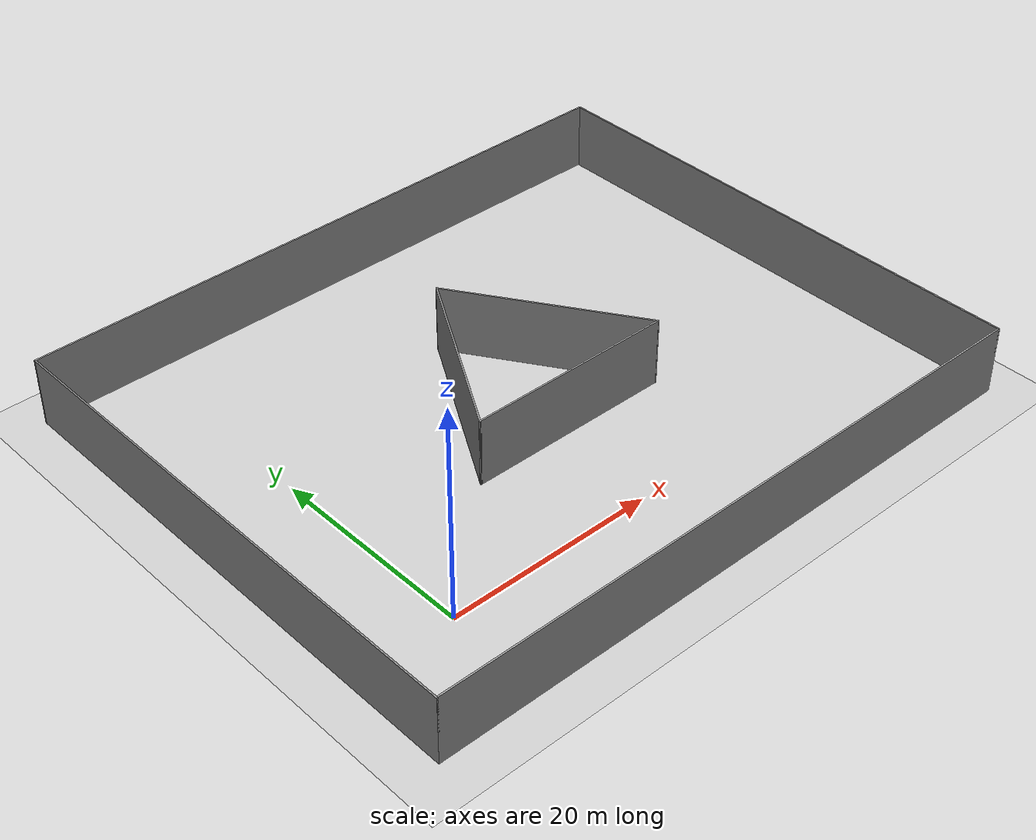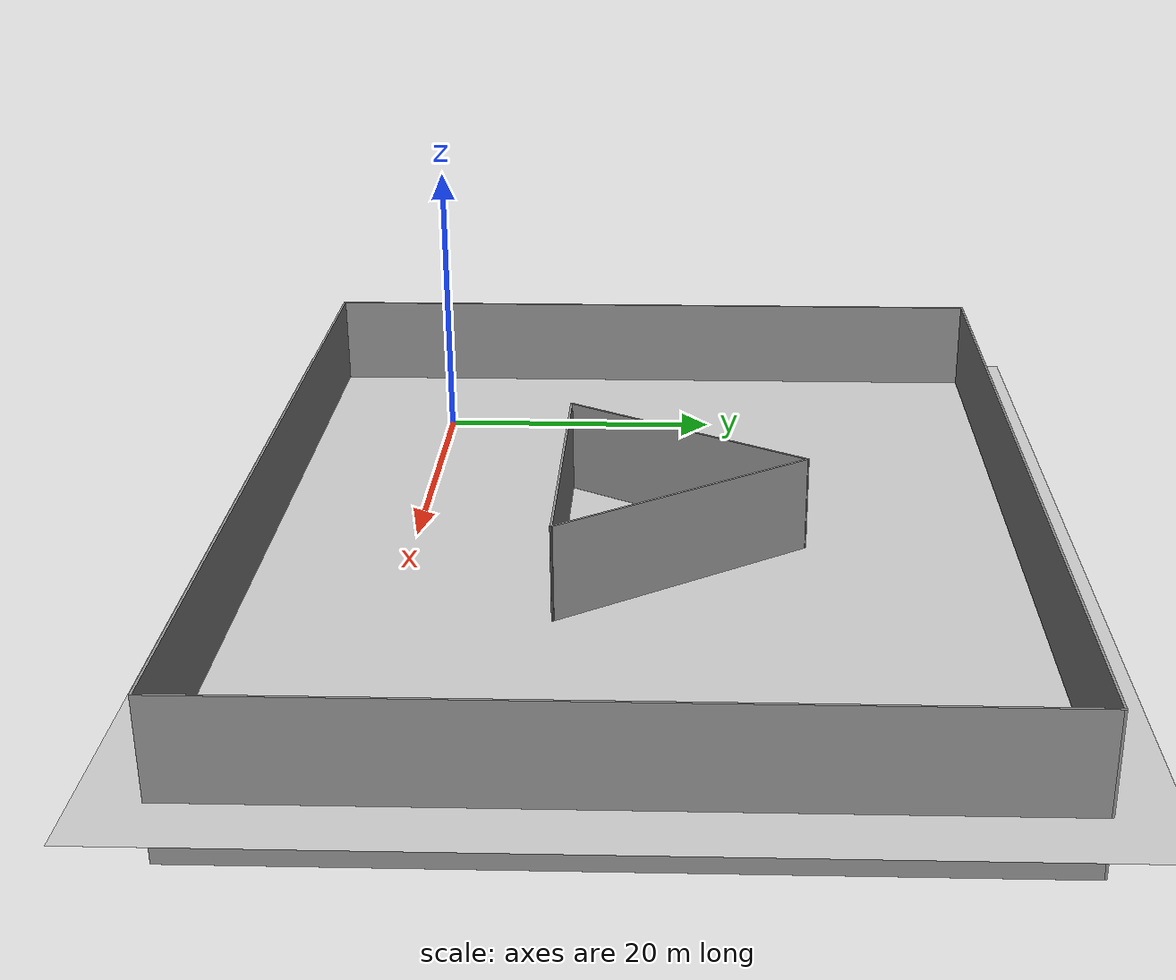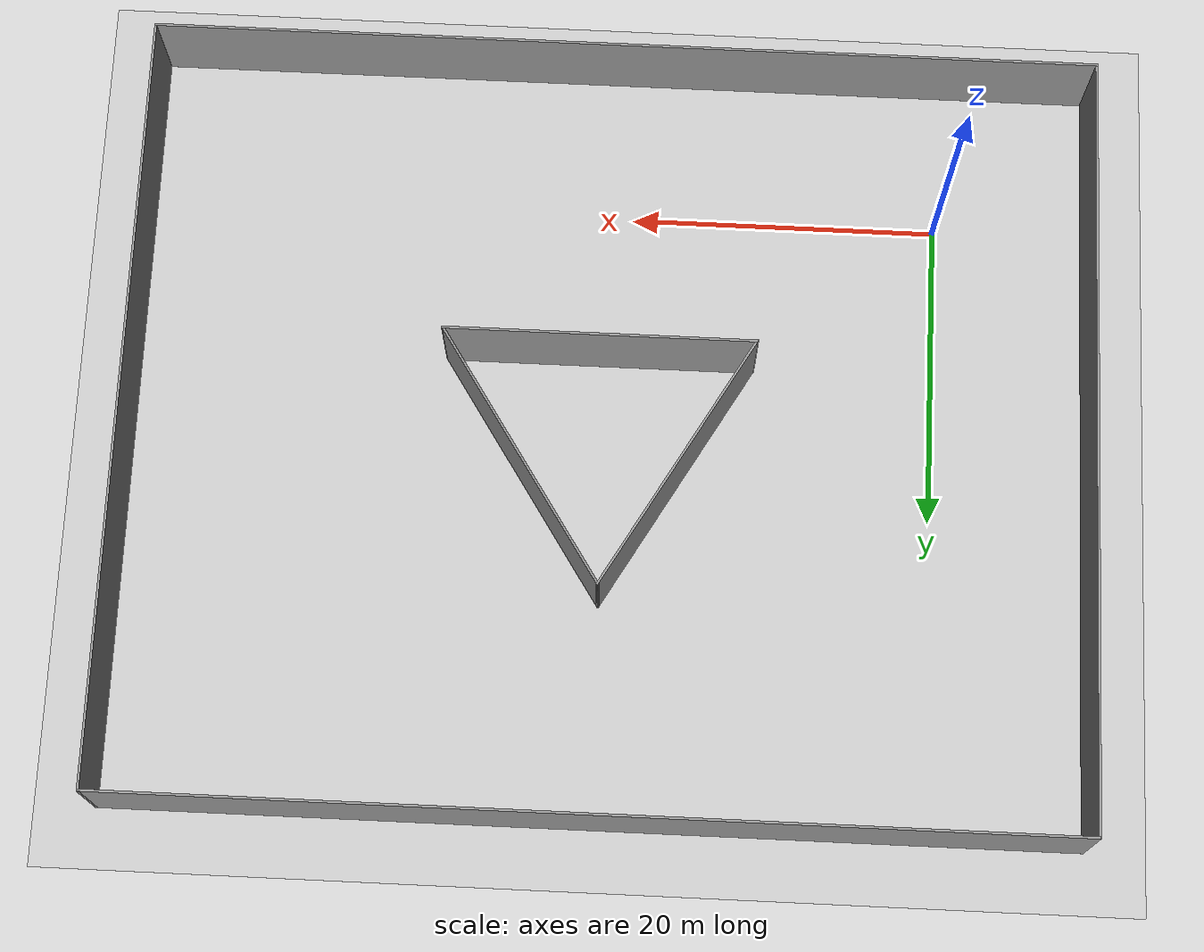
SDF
<sdf version="1.7">
 <world name="default">
  <light name="sun" type="directional">
   <pose>0 0 10 0 -0 0</pose>
   <diffuse>0.8 0.8 0.8 1</diffuse>
   <specular>0.2 0.2 0.2 1</specular>
   <attenuation>
    <range>1000</range>
    <constant>0.9</constant>
    <linear>0.01</linear>
    <quadratic>0.001</quadratic>
   </attenuation>
   <direction>-0.5 0.1 -0.9</direction>
   <spot><inner_angle>0</inner_angle><outer_angle>0</outer_angle><falloff>0</falloff></spot>
  </light>
  <model name="ground_plane">
   <static>1</static>
   <link name="link">
    <collision name="collision">
     <geometry><plane><normal>0 0 1</normal><size>100 100</size></plane></geometry>
     <surface><friction><ode><mu>100</mu><mu2>50</mu2></ode></friction></surface>
    </collision>
    <visual name="visual">
     <cast_shadows>0</cast_shadows>
     <geometry><plane><normal>0 0 1</normal><size>100 100</size></plane></geometry>
     <material>
      <script><uri>file://media/materials/scripts/gazebo.material</uri><name>Gazebo/Grey</name></script>
     </material>
    </visual>
   </link>
  </model>
  <gravity>0 0 -9.8</gravity>
  <magnetic_field>6e-06 2.3e-05 -4.2e-05</magnetic_field>
  <atmosphere type="adiabatic"/>
  <physics type="ode">
   <max_step_size>0.01</max_step_size>
   <real_time_factor>1</real_time_factor>
   <real_time_update_rate>100</real_time_update_rate>
  </physics>
  <scene><ambient>0.4 0.4 0.4 1</ambient><background>0.7 0.7 0.7 1</background><shadows>1</shadows></scene>
  <audio><device>default</device></audio>
  <spherical_coordinates>
   <surface_model>EARTH_WGS84</surface_model>
   <latitude_deg>0</latitude_deg>
   <longitude_deg>0</longitude_deg>
   <elevation>0</elevation>
   <heading_deg>0</heading_deg>
  </spherical_coordinates>
  <model name="Untitled">
   <pose>21.0471 15.4632 0 0 -0 0</pose>
   <link name="Wall_10">
    <collision name="Wall_10_Collision">
     <geometry><box><size>19 0.15 10.5</size></box></geometry>
     <pose>0 0 1.25 0 -0 0</pose>
    </collision>
    <visual name="Wall_10_Visual">
     <pose>0 0 1.25 0 -0 0</pose>
     <geometry><box><size>19 0.15 10.5</size></box></geometry>
     <material>
      <script><uri>file://media/materials/scripts/gazebo.material</uri><name>Gazebo/Grey</name></script>
      <ambient>1 1 1 1</ambient>
     </material>
     <meta><layer>0</layer></meta>
    </visual>
    <pose>-4.62404 2.90142 0 0 -0 -2.0944</pose>
   </link>
   <link name="Wall_11">
    <collision name="Wall_11_Collision">
     <geometry><box><size>20.25 0.15 10.5</size></box></geometry>
     <pose>0 0 1.25 0 -0 0</pose>
    </collision>
    <visual name="Wall_11_Visual">
     <pose>0 0 1.25 0 -0 0</pose>
     <geometry><box><size>20.25 0.15 10.5</size></box></geometry>
     <material>
      <script><uri>file://media/materials/scripts/gazebo.material</uri><name>Gazebo/Grey</name></script>
      <ambient>1 1 1 1</ambient>
     </material>
     <meta><layer>0</layer></meta>
    </visual>
    <pose>0.713455 -5.26087 0 0 -0 0</pose>
   </link>
   <link name="Wall_12">
    <collision name="Wall_12_Collision">
     <geometry><box><size>19.6551 0.15 10.5</size></box></geometry>
     <pose>0 0 1.25 0 -0 0</pose>
    </collision>
    <visual name="Wall_12_Visual">
     <pose>0 0 1.25 0 -0 0</pose>
     <geometry><box><size>19.6551 0.15 10.5</size></box></geometry>
     <material>
      <script><uri>file://media/materials/scripts/gazebo.material</uri><name>Gazebo/Grey</name></script>
      <ambient>1 1 1 1</ambient>
     </material>
     <meta><layer>0</layer></meta>
    </visual>
    <pose>5.42596 2.90142 0 0 -0 2.14992</pose>
   </link>
   <link name="Wall_5">
    <collision name="Wall_5_Collision">
     <geometry><box><size>62.25 0.15 10.5</size></box></geometry>
     <pose>0 0 1.25 0 -0 0</pose>
    </collision>
    <visual name="Wall_5_Visual">
     <pose>0 0 1.25 0 -0 0</pose>
     <geometry><box><size>62.25 0.15 10.5</size></box></geometry>
     <material>
      <script><uri>file://media/materials/scripts/gazebo.material</uri><name>Gazebo/Grey</name></script>
      <ambient>1 1 1 1</ambient>
     </material>
     <meta><layer>0</layer></meta>
    </visual>
    <pose>-1e-06 -25.425 0 0 -0 0</pose>
   </link>
   <link name="Wall_6">
    <collision name="Wall_6_Collision">
     <geometry><box><size>51 0.15 10.5</size></box></geometry>
     <pose>0 0 1.25 0 -0 0</pose>
    </collision>
    <visual name="Wall_6_Visual">
     <pose>0 0 1.25 0 -0 0</pose>
     <geometry><box><size>51 0.15 10.5</size></box></geometry>
     <material>
      <script><uri>file://media/materials/scripts/gazebo.material</uri><name>Gazebo/Grey</name></script>
      <ambient>1 1 1 1</ambient>
     </material>
     <meta><layer>0</layer></meta>
    </visual>
    <pose>31.05 1e-06 0 0 -0 1.5708</pose>
   </link>
   <link name="Wall_7">
    <collision name="Wall_7_Collision">
     <geometry><box><size>62.25 0.15 10.5</size></box></geometry>
     <pose>0 0 1.25 0 -0 0</pose>
    </collision>
    <visual name="Wall_7_Visual">
     <pose>0 0 1.25 0 -0 0</pose>
     <geometry><box><size>62.25 0.15 10.5</size></box></geometry>
     <material>
      <script><uri>file://media/materials/scripts/gazebo.material</uri><name>Gazebo/Grey</name></script>
      <ambient>1 1 1 1</ambient>
     </material>
     <meta><layer>0</layer></meta>
    </visual>
    <pose>-1e-06 25.425 0 0 -0 3.14159</pose>
   </link>
   <link name="Wall_8">
    <collision name="Wall_8_Collision">
     <geometry><box><size>51 0.15 10.5</size></box></geometry>
     <pose>0 0 1.25 0 -0 0</pose>
    </collision>
    <visual name="Wall_8_Visual">
     <pose>0 0 1.25 0 -0 0</pose>
     <geometry><box><size>51 0.15 10.5</size></box></geometry>
     <material>
      <script><uri>file://media/materials/scripts/gazebo.material</uri><name>Gazebo/Grey</name></script>
      <ambient>1 1 1 1</ambient>
     </material>
     <meta><layer>0</layer></meta>
    </visual>
    <pose>-31.05 1e-06 0 0 -0 -1.5708</pose>
   </link>
   <static>1</static>
  </model>
 </world>
</sdf>
